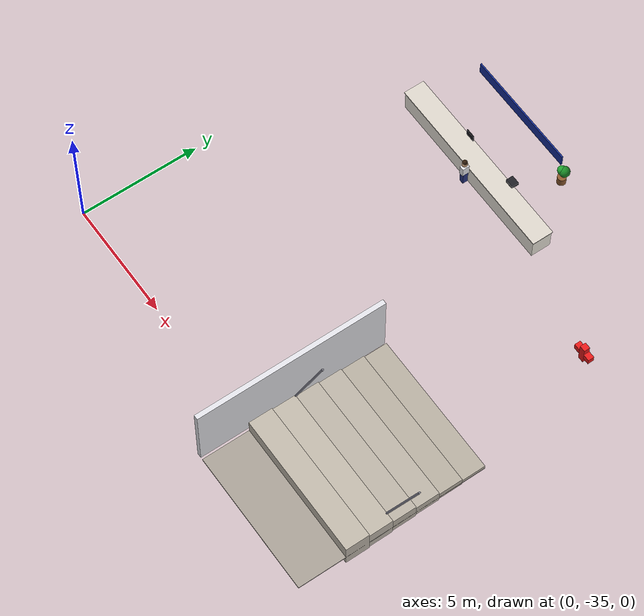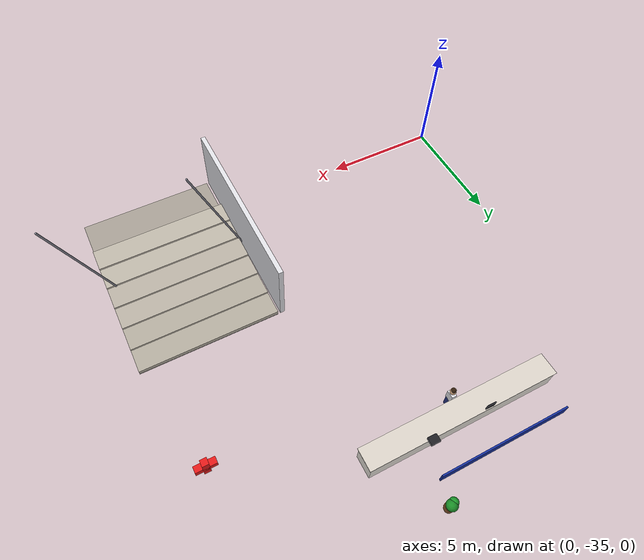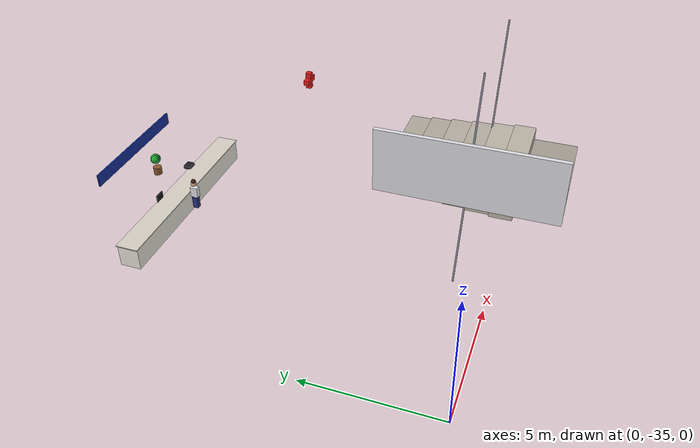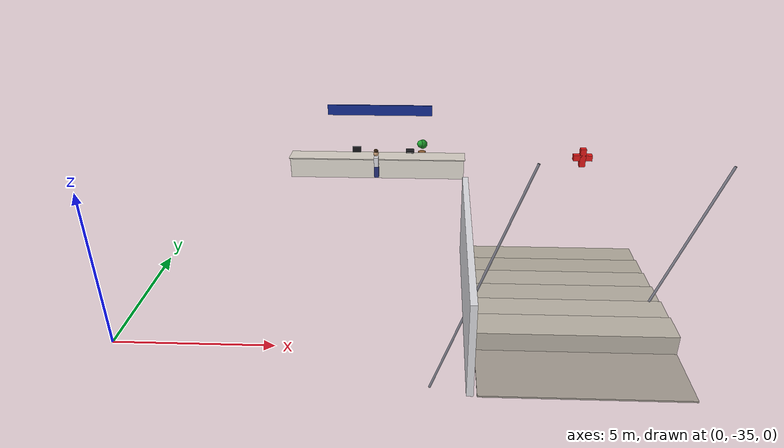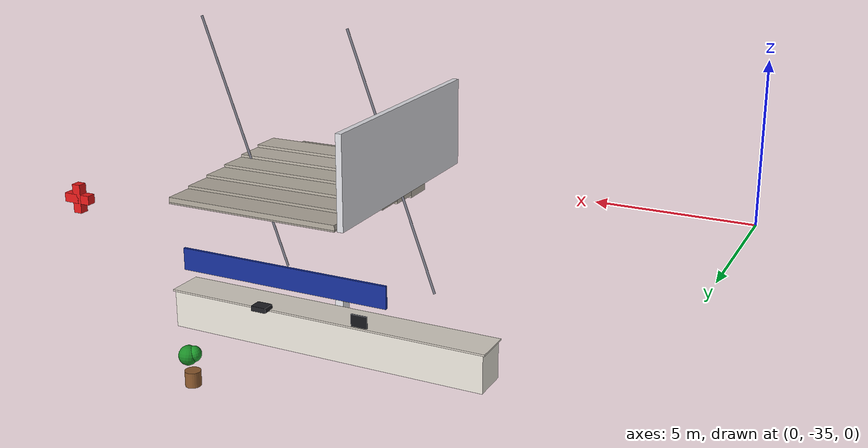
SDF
<sdf version="1.9">
 <world name="hospital">
  <model name="esc_base">
   <static>true</static>
   <pose>14 -33 0 0 0 0</pose>
   <link name="l">
    <collision name="c"><geometry><box><size>6 8 0.05</size></box></geometry></collision>
    <visual name="v">
     <geometry><box><size>6 8 0.05</size></box></geometry>
     <material><ambient>0.65 0.62 0.58 1</ambient><diffuse>0.65 0.62 0.58 1</diffuse></material>
    </visual>
   </link>
  </model>
  <model name="m1">
   <static>true</static>
   <pose>14 -29.5 0.1 0 0 0</pose>
   <link name="l">
    <collision name="c"><geometry><box><size>6 1 0.18</size></box></geometry></collision>
    <visual name="v">
     <geometry><box><size>6 1 0.18</size></box></geometry>
     <material><ambient>0.7 0.67 0.62 1</ambient><diffuse>0.7 0.67 0.62 1</diffuse></material>
    </visual>
   </link>
  </model>
  <model name="m2">
   <static>true</static>
   <pose>14 -30.5 0.1 0 0 0</pose>
   <link name="l">
    <collision name="c"><geometry><box><size>6 1 0.36</size></box></geometry></collision>
    <visual name="v">
     <geometry><box><size>6 1 0.36</size></box></geometry>
     <material><ambient>0.7 0.67 0.62 1</ambient><diffuse>0.7 0.67 0.62 1</diffuse></material>
    </visual>
   </link>
  </model>
  <model name="m3">
   <static>true</static>
   <pose>14 -31.5 0.1 0 0 0</pose>
   <link name="l">
    <collision name="c"><geometry><box><size>6 1 0.54</size></box></geometry></collision>
    <visual name="v">
     <geometry><box><size>6 1 0.54</size></box></geometry>
     <material><ambient>0.72 0.69 0.64 1</ambient><diffuse>0.72 0.69 0.64 1</diffuse></material>
    </visual>
   </link>
  </model>
  <model name="m4">
   <static>true</static>
   <pose>14 -32.5 0.1 0 0 0</pose>
   <link name="l">
    <collision name="c"><geometry><box><size>6 1 0.72</size></box></geometry></collision>
    <visual name="v">
     <geometry><box><size>6 1 0.72</size></box></geometry>
     <material><ambient>0.72 0.69 0.64 1</ambient><diffuse>0.72 0.69 0.64 1</diffuse></material>
    </visual>
   </link>
  </model>
  <model name="m5">
   <static>true</static>
   <pose>14 -33.5 0.1 0 0 0</pose>
   <link name="l">
    <collision name="c"><geometry><box><size>6 1 0.90</size></box></geometry></collision>
    <visual name="v">
     <geometry><box><size>6 1 0.90</size></box></geometry>
     <material><ambient>0.74 0.71 0.66 1</ambient><diffuse>0.74 0.71 0.66 1</diffuse></material>
    </visual>
   </link>
  </model>
  <model name="m6">
   <static>true</static>
   <pose>14 -34.5 0.1 0 0 0</pose>
   <link name="l">
    <collision name="c"><geometry><box><size>6 1 1.08</size></box></geometry></collision>
    <visual name="v">
     <geometry><box><size>6 1 1.08</size></box></geometry>
     <material><ambient>0.74 0.71 0.66 1</ambient><diffuse>0.74 0.71 0.66 1</diffuse></material>
    </visual>
   </link>
  </model>
  <model name="rampe_g">
   <static>true</static>
   <pose>11.2 -33 1.0 0 0.35 0</pose>
   <link name="l">
    <visual name="v">
     <geometry><cylinder><radius>0.04</radius><length>9</length></cylinder></geometry>
     <material><ambient>0.5 0.5 0.55 1</ambient><diffuse>0.5 0.5 0.55 1</diffuse></material>
    </visual>
   </link>
  </model>
  <model name="rampe_d">
   <static>true</static>
   <pose>16.8 -33 1.0 0 0.35 0</pose>
   <link name="l">
    <visual name="v">
     <geometry><cylinder><radius>0.04</radius><length>9</length></cylinder></geometry>
     <material><ambient>0.5 0.5 0.55 1</ambient><diffuse>0.5 0.5 0.55 1</diffuse></material>
    </visual>
   </link>
  </model>
  <model name="mur_esc">
   <static>true</static>
   <pose>10.8 -33 1.5 0 0 0</pose>
   <link name="l">
    <collision name="c"><geometry><box><size>0.2 8 3</size></box></geometry></collision>
    <visual name="v">
     <geometry><box><size>0.2 8 3</size></box></geometry>
     <material><ambient>0.88 0.88 0.9 1</ambient><diffuse>0.88 0.88 0.9 1</diffuse></material>
    </visual>
   </link>
  </model>
  <model name="cpt1">
   <static>true</static>
   <pose>7 -22 0.45 0 0 0</pose>
   <link name="l">
    <collision name="c"><geometry><box><size>8 0.85 0.9</size></box></geometry></collision>
    <visual name="v">
     <geometry><box><size>8 0.85 0.9</size></box></geometry>
     <material><ambient>0.92 0.9 0.86 1</ambient><diffuse>0.92 0.9 0.86 1</diffuse></material>
    </visual>
    <visual name="dessus">
     <pose>0 0 0.47 0 0 0</pose>
     <geometry><box><size>8.1 0.9 0.04</size></box></geometry>
     <material><ambient>0.85 0.82 0.78 1</ambient><diffuse>0.85 0.82 0.78 1</diffuse></material>
    </visual>
   </link>
  </model>
  <model name="pc_acc">
   <static>true</static>
   <pose>6 -21.6 1.08 0 0 0</pose>
   <link name="l">
    <visual name="ecran">
     <geometry><box><size>0.4 0.04 0.3</size></box></geometry>
     <material><ambient>0.08 0.08 0.1 1</ambient><diffuse>0.08 0.08 0.1 1</diffuse></material>
    </visual>
    <visual name="glow">
     <geometry><box><size>0.36 0.02 0.26</size></box></geometry>
     <material>
      <ambient>0.15 0.5 0.9 1</ambient>
      <diffuse>0.15 0.5 0.9 1</diffuse>
      <emissive>0.06 0.2 0.4 1</emissive>
     </material>
    </visual>
   </link>
  </model>
  <model name="sign_acc">
   <static>true</static>
   <pose>7 -20.1 2.5 0 0 0</pose>
   <link name="l">
    <visual name="v">
     <geometry><box><size>5 0.06 0.5</size></box></geometry>
     <material>
      <ambient>0.08 0.18 0.6 1</ambient>
      <diffuse>0.08 0.18 0.6 1</diffuse>
      <emissive>0.03 0.08 0.25 1</emissive>
     </material>
    </visual>
   </link>
  </model>
  <model name="cx_h">
   <static>true</static>
   <pose>16 -24 1.8 0 0 0</pose>
   <link name="l">
    <visual name="v">
     <geometry><box><size>0.8 0.25 0.25</size></box></geometry>
     <material>
      <ambient>0.9 0.1 0.1 1</ambient>
      <diffuse>0.9 0.1 0.1 1</diffuse>
      <emissive>0.3 0 0 1</emissive>
     </material>
    </visual>
   </link>
  </model>
  <model name="cx_v">
   <static>true</static>
   <pose>16 -24 1.8 0 0 0</pose>
   <link name="l">
    <visual name="v">
     <geometry><box><size>0.25 0.25 0.8</size></box></geometry>
     <material>
      <ambient>0.9 0.1 0.1 1</ambient>
      <diffuse>0.9 0.1 0.1 1</diffuse>
      <emissive>0.3 0 0 1</emissive>
     </material>
    </visual>
   </link>
  </model>
  <model name="assistante">
   <static>true</static>
   <pose>7 -22.6 0 0 0 -1.57</pose>
   <link name="l">
    <visual name="j">
     <pose>0 0 0.42 0 0 0</pose>
     <geometry><box><size>0.22 0.2 0.55</size></box></geometry>
     <material><ambient>0.15 0.2 0.5 1</ambient><diffuse>0.15 0.2 0.5 1</diffuse></material>
    </visual>
    <visual name="t">
     <pose>0 0 0.9 0 0 0</pose>
     <geometry><box><size>0.3 0.2 0.45</size></box></geometry>
     <material><ambient>0.9 0.9 0.92 1</ambient><diffuse>0.9 0.9 0.92 1</diffuse></material>
    </visual>
    <visual name="h">
     <pose>0 0 1.28 0 0 0</pose>
     <geometry><sphere><radius>0.12</radius></sphere></geometry>
     <material><ambient>0.82 0.65 0.5 1</ambient><diffuse>0.82 0.65 0.5 1</diffuse></material>
    </visual>
    <visual name="cv">
     <pose>0 0 1.4 0 0 0</pose>
     <geometry><sphere><radius>0.1</radius></sphere></geometry>
     <material><ambient>0.2 0.12 0.05 1</ambient><diffuse>0.2 0.12 0.05 1</diffuse></material>
    </visual>
    <collision name="c">
     <pose>0 0 0.75 0 0 0</pose>
     <geometry><box><size>0.35 0.25 1.5</size></box></geometry>
    </collision>
   </link>
  </model>
  <model name="plante1">
   <static>true</static>
   <pose>9 -19.5 0 0 0 0</pose>
   <link name="l">
    <visual name="pot">
     <geometry><cylinder><radius>0.18</radius><length>0.35</length></cylinder></geometry>
     <material><ambient>0.55 0.35 0.18 1</ambient><diffuse>0.55 0.35 0.18 1</diffuse></material>
    </visual>
    <visual name="pl1">
     <pose>0.05 0.05 0.55 0.15 0 0</pose>
     <geometry><sphere><radius>0.22</radius></sphere></geometry>
     <material><ambient>0.1 0.55 0.15 1</ambient><diffuse>0.1 0.55 0.15 1</diffuse></material>
    </visual>
    <visual name="pl2">
     <pose>-0.05 0 0.58 -0.1 0.1 0</pose>
     <geometry><sphere><radius>0.18</radius></sphere></geometry>
     <material><ambient>0.12 0.62 0.18 1</ambient><diffuse>0.12 0.62 0.18 1</diffuse></material>
    </visual>
   </link>
  </model>
  <model name="printer_acc">
   <static>true</static>
   <pose>8.5 -21.5 0.98 0 0 0</pose>
   <link name="l">
    <collision name="c"><geometry><box><size>0.38 0.3 0.12</size></box></geometry></collision>
    <visual name="v">
     <geometry><box><size>0.38 0.3 0.12</size></box></geometry>
     <material><ambient>0.12 0.12 0.14 1</ambient><diffuse>0.12 0.12 0.14 1</diffuse></material>
    </visual>
    <visual name="tray">
     <pose>0 -0.16 -0.02 0 0 0</pose>
     <geometry><box><size>0.32 0.02 0.06</size></box></geometry>
     <material><ambient>0.5 0.5 0.5 1</ambient><diffuse>0.5 0.5 0.5 1</diffuse></material>
    </visual>
   </link>
  </model>
 </world>
</sdf>
